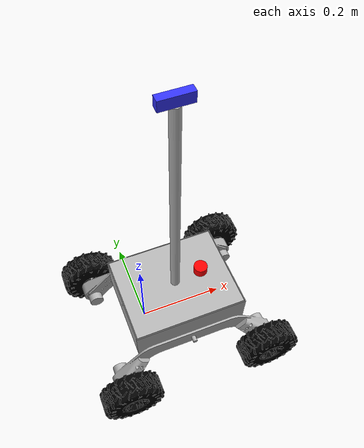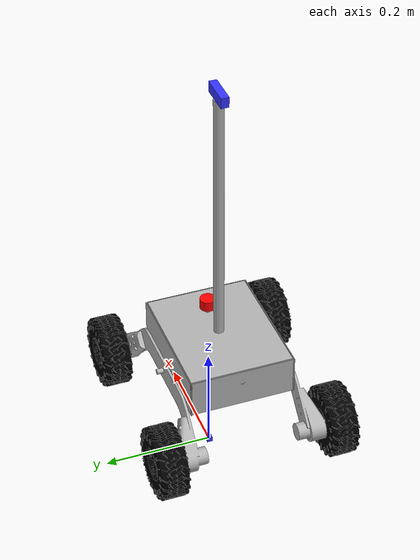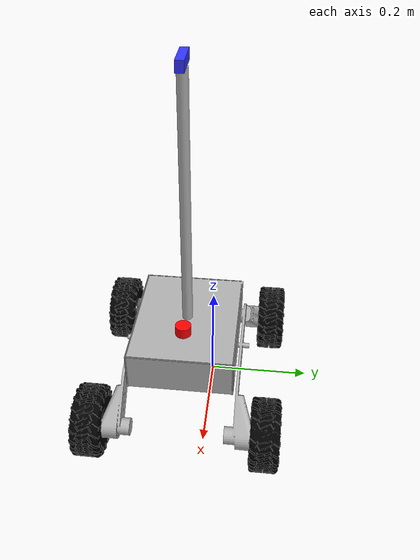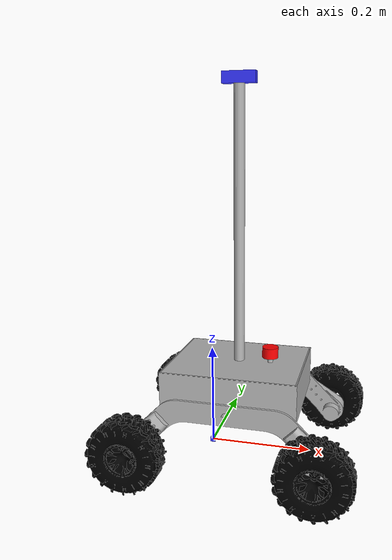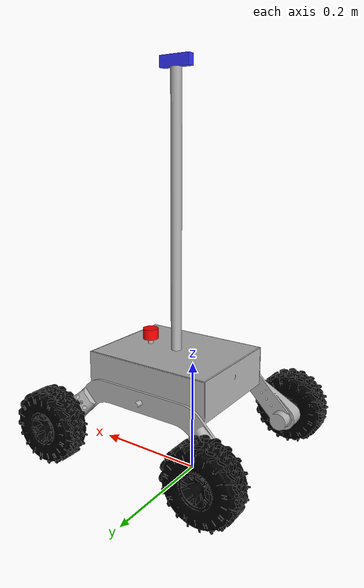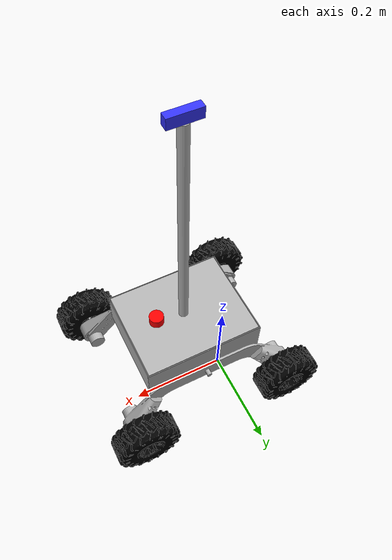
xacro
<?xml version="1.0" ?>
<robot name="yieldbotvf" xmlns:xacro="http://www.ros.org/wiki/xacro">

<xacro:include filename="$(find yieldbotvf_description)/urdf/materials.xacro" />
<xacro:include filename="$(find yieldbotvf_description)/urdf/yieldbotvf.trans" />
<xacro:include filename="$(find yieldbotvf_description)/urdf/yieldbotvf.gazebo" />
<xacro:include filename="$(find yieldbotvf_description)/urdf/lidar.xacro" />
<xacro:arg name="use_ros2_control" default="true"/>
<xacro:arg name="sim_mode" default="false"/>
<xacro:if value="$(arg use_ros2_control)">
    <xacro:include filename="$(find yieldbotvf_description)/urdf/ros2_control.xacro" />
</xacro:if>
<xacro:unless value="$(arg use_ros2_control)">
    <xacro:include filename="$(find yieldbotvf_description)/urdf/gazebo_control.xacro" />
</xacro:unless>
<link name="base_link">
  <inertial>
    <origin xyz="0.06645340709536898 -0.0443735531813499 0.16081823359659522" rpy="0 0 0"/>
    <mass value="34.72387801597304"/>
    <inertia ixx="0.326956" iyy="0.416446" izz="0.400568" ixy="-3.1e-05" iyz="0.0" ixz="4.1e-05"/>
  </inertial>
  <visual>
    <origin xyz="0 0 0" rpy="0 0 0"/>
    <geometry>
      <mesh filename="file://$(find yieldbotvf_description)/meshes/base_link.stl" scale="0.001 0.001 0.001"/>
    </geometry>
    <material name="silver"/>
  </visual>
  <collision>
    <origin xyz="0 0 0" rpy="0 0 0"/>
    <geometry>
      <mesh filename="file://$(find yieldbotvf_description)/meshes/base_link.stl" scale="0.001 0.001 0.001"/>
    </geometry>
  </collision>
</link>

<link name="base_footprint">
  <visual>
    <origin xyz="0 0 0" rpy="0 0 0"/>
    <geometry>
      <box size="0.01 0.01 0.01"/>  <!-- Optionally, you can define a small box -->
    </geometry>
    <material name="blue"/>
  </visual>
</link>

<joint name="base_link_to_base_footprint" type="fixed">
  <origin xyz="0 0 0" rpy="0 0 0"/>
  <parent link="base_link"/>
  <child link="base_footprint"/>
</joint>

<link name="roue_avd_1">
  <inertial>
    <origin xyz="-4.736948390204887e-07 -0.007596076970803334 1.7481683353692823e-07" rpy="0 0 0"/>
    <mass value="1.1087901486283622"/>
    <inertia ixx="0.001541" iyy="0.002549" izz="0.001541" ixy="0.0" iyz="-0.0" ixz="0.0"/>
  </inertial>
  <visual>
    <origin xyz="-0.231408 0.201374 -0.068038" rpy="0 0 0"/>
    <geometry>
      <mesh filename="file://$(find yieldbotvf_description)/meshes/roue_avd_1.stl" scale="0.001 0.001 0.001"/>
    </geometry>
    <material name="black">
        <color rgba="0 0 0 1"/>
    </material>
  </visual>
  <collision>
    <origin xyz="-0.231408 0.201374 -0.068038" rpy="0 0 0"/>
    <geometry>
      <mesh filename="file://$(find yieldbotvf_description)/meshes/roue_avd_1.stl" scale="0.001 0.001 0.001"/>
    </geometry>
  </collision>
</link>

<link name="roue_arg_1">
  <inertial>
    <origin xyz="-3.138027010879396e-07 0.007596968013499586 -3.939244253015062e-08" rpy="0 0 0"/>
    <mass value="1.1087890246341048"/>
    <inertia ixx="0.001541" iyy="0.002549" izz="0.001541" ixy="0.0" iyz="-0.0" ixz="-0.0"/>
  </inertial>
  <visual>
    <origin xyz="0.09861 -0.112626 -0.068278" rpy="0 0 0"/>
    <geometry>
      <mesh filename="file://$(find yieldbotvf_description)/meshes/roue_arg_1.stl" scale="0.001 0.001 0.001"/>
    </geometry>
    <material name="black">
        <color rgba="0 0 0 1"/>
    </material>
  </visual>
  <collision>
    <origin xyz="0.09861 -0.112626 -0.068278" rpy="0 0 0"/>
    <geometry>
      <mesh filename="file://$(find yieldbotvf_description)/meshes/roue_arg_1.stl" scale="0.001 0.001 0.001"/>
    </geometry>
  </collision>
</link>

<link name="roue_ard_1">
  <inertial>
    <origin xyz="4.829659986105295e-07 -0.007596073622457733 -2.0892536410632712e-07" rpy="0 0 0"/>
    <mass value="1.1087890246340713"/>
    <inertia ixx="0.001541" iyy="0.002549" izz="0.001541" ixy="-0.0" iyz="-0.0" ixz="0.0"/>
  </inertial>
  <visual>
    <origin xyz="0.098764 0.201374 -0.067791" rpy="0 0 0"/>
    <geometry>
      <mesh filename="file://$(find yieldbotvf_description)/meshes/roue_ard_1.stl" scale="0.001 0.001 0.001"/>
    </geometry>
    <material name="black">
        <color rgba="0 0 0 1"/>
    </material>
  </visual>
  <collision>
    <origin xyz="0.098764 0.201374 -0.067791" rpy="0 0 0"/>
    <geometry>
      <mesh filename="file://$(find yieldbotvf_description)/meshes/roue_ard_1.stl" scale="0.001 0.001 0.001"/>
    </geometry>
  </collision>
</link>

<link name="roue_avg_1">
  <inertial>
    <origin xyz="2.722588726966624e-07 0.007596960497490313 -7.69551199153451e-09" rpy="0 0 0"/>
    <mass value="1.1087963880901248"/>
    <inertia ixx="0.001541" iyy="0.002549" izz="0.001541" ixy="-0.0" iyz="-0.0" ixz="0.0"/>
  </inertial>
  <visual>
    <origin xyz="-0.231648 -0.112626 -0.067462" rpy="0 0 0"/>
    <geometry>
      <mesh filename="file://$(find yieldbotvf_description)/meshes/roue_avg_1.stl" scale="0.001 0.001 0.001"/>
    </geometry>
    <material name="black">
        <color rgba="0 0 0 1"/>
    </material>
  </visual>
  <collision>
    <origin xyz="-0.231648 -0.112626 -0.067462" rpy="0 0 0"/>
    <geometry>
      <mesh filename="file://$(find yieldbotvf_description)/meshes/roue_avg_1.stl" scale="0.001 0.001 0.001"/>
    </geometry>
  </collision>
</link>

<link name="lidar_1">
  <inertial>
    <origin xyz="-2.702674867793853e-07 4.4720077497367727e-07 0.009999999999999537" rpy="0 0 0"/>
    <mass value="0.11097676048805943"/>
    <inertia ixx="1e-05" iyy="1e-05" izz="1.2e-05" ixy="0.0" iyz="0.0" ixz="-0.0"/>
  </inertial>
  <visual>
    <origin xyz="-0.126446 0.044374 -0.2085" rpy="0 0 0"/>
    <geometry>
      <mesh filename="file://$(find yieldbotvf_description)/meshes/lidar_1.stl" scale="0.001 0.001 0.001"/>
    </geometry>
    <material name="red">
       <color rgba="1 0 0 1"/>
    </material>
  </visual>
  <collision>
    <origin xyz="-0.126446 0.044374 -0.2085" rpy="0 0 0"/>
    <geometry>
      <mesh filename="file://$(find yieldbotvf_description)/meshes/lidar_1.stl" scale="0.001 0.001 0.001"/>
    </geometry>
  </collision>
</link>

<link name="camera_1">
  <inertial>
    <origin xyz="-2.7026748668224077e-07 4.472007749667384e-07 0.009999999999999898" rpy="0 0 0"/>
    <mass value="0.14129999999999998"/>
    <inertia ixx="7e-06" iyy="4.7e-05" izz="4.5e-05" ixy="-0.0" iyz="0.0" ixz="0.0"/>
  </inertial>
  <visual>
    <origin xyz="-0.066446 0.044374 -0.6985" rpy="0 0 0"/>
    <geometry>
      <mesh filename="file://$(find yieldbotvf_description)/meshes/camera_1.stl" scale="0.001 0.001 0.001"/>
    </geometry>
    <material name="blue">
        <color rgba="0.2 0.2 1 1"/>
    </material>
  </visual>
  <collision>
    <origin xyz="-0.066446 0.044374 -0.6985" rpy="0 0 0"/>
    <geometry>
      <mesh filename="file://$(find yieldbotvf_description)/meshes/camera_1.stl" scale="0.001 0.001 0.001"/>
    </geometry>
  </collision>
</link>

<joint name="linkavd" type="continuous">
  <origin xyz="0.231408 -0.201374 0.068038" rpy="0 0 0"/>
  <parent link="base_link"/>
  <child link="roue_avd_1"/>
  <axis xyz="0.0 1.0 -0.0"/>
</joint>

<joint name="linkarg" type="continuous">
  <origin xyz="-0.09861 0.112626 0.068278" rpy="0 0 0"/>
  <parent link="base_link"/>
  <child link="roue_arg_1"/>
  <axis xyz="0.0 1.0 -0.0"/>
</joint>

<joint name="linkard" type="continuous">
  <origin xyz="-0.098764 -0.201374 0.067791" rpy="0 0 0"/>
  <parent link="base_link"/>
  <child link="roue_ard_1"/>
  <axis xyz="0.0 1.0 -0.0"/>
</joint>

<joint name="linkavg" type="continuous">
  <origin xyz="0.231648 0.112626 0.067462" rpy="0 0 0"/>
  <parent link="base_link"/>
  <child link="roue_avg_1"/>
  <axis xyz="0.0 1.0 -0.0"/>
</joint>

<joint name="linklidar" type="fixed">
  <origin xyz="0.126446 -0.044374 0.2085" rpy="0 0 0"/>
  <parent link="base_link"/>
  <child link="lidar_1"/>
</joint>

<joint name="linkcam" type="fixed">
  <origin xyz="0.066446 -0.044374 0.6985" rpy="0 0 0"/>
  <parent link="base_link"/>
  <child link="camera_1"/>
</joint>

</robot>

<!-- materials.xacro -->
<robot name="yieldbotvf" xmlns:xacro="http://www.ros.org/wiki/xacro" >

<material name="silver">
  <color rgba="0.700 0.700 0.700 1.000"/>
</material>

</robot>

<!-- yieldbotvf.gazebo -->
<robot name="yieldbotvf" xmlns:xacro="http://www.ros.org/wiki/xacro" >

<xacro:property name="body_color" value="Gazebo/Silver" />
<xacro:property name="wheel_color" value="Gazebo/Black" />
<xacro:property name="lidar_color" value="Gazebo/Red" />
<xacro:property name="cam_color" value="Gazebo/Blue" />

<gazebo>
  <plugin name="control" filename="libgazebo_ros_control.so"/>
</gazebo>
<gazebo reference="base_link">
  <material>${body_color}</material>
  <mu1>0.2</mu1>
  <mu2>0.2</mu2>
  <self_collide>true</self_collide>
  <gravity>true</gravity>
</gazebo>

<gazebo reference="roue_avd_1">
  <material>${wheel_color}</material>
  <mu1>0.2</mu1>
  <mu2>0.2</mu2>
  <self_collide>true</self_collide>
</gazebo>

<gazebo reference="roue_arg_1">
  <material>${wheel_color}</material>
  <mu1>0.2</mu1>
  <mu2>0.2</mu2>
  <self_collide>true</self_collide>
</gazebo>

<gazebo reference="roue_ard_1">
  <material>${wheel_color}</material>
  <mu1>0.2</mu1>
  <mu2>0.2</mu2>
  <self_collide>true</self_collide>
</gazebo>

<gazebo reference="roue_avg_1">
  <material>${wheel_color}</material>
  <mu1>0.2</mu1>
  <mu2>0.2</mu2>
  <self_collide>true</self_collide>
</gazebo>

<gazebo reference="lidar_1">
  <material>${lidar_color}</material>
  <mu1>0.2</mu1>
  <mu2>0.2</mu2>
  <self_collide>true</self_collide>
</gazebo>

<gazebo reference="camera_1">
  <material>${cam_color}</material>
  <mu1>0.2</mu1>
  <mu2>0.2</mu2>
  <self_collide>true</self_collide>
</gazebo>

</robot>
